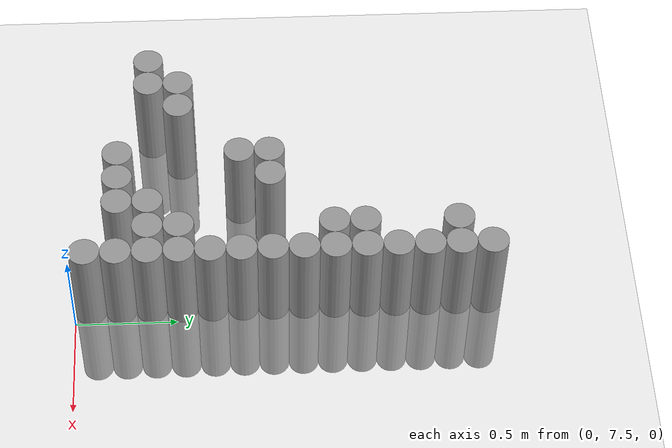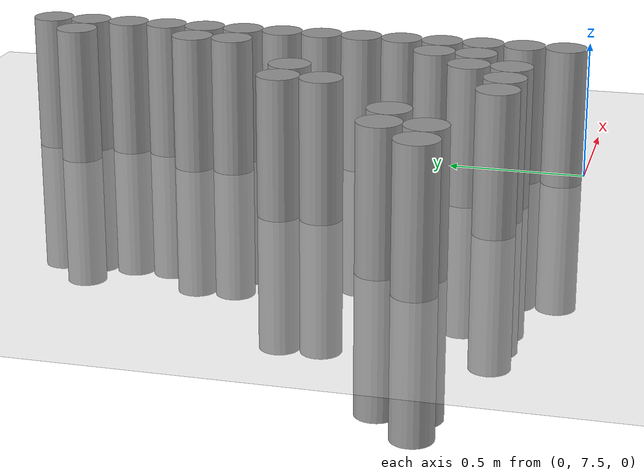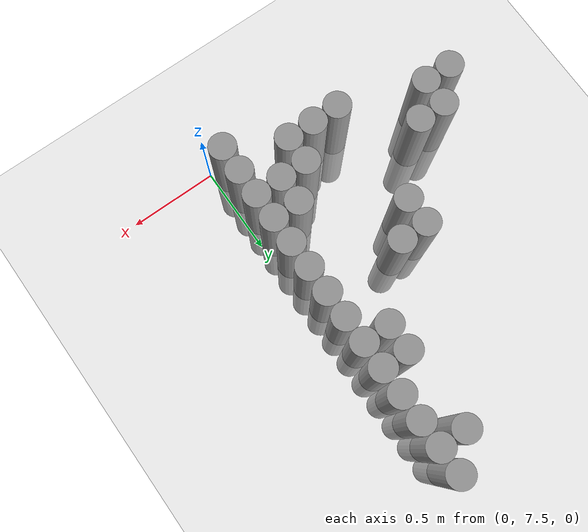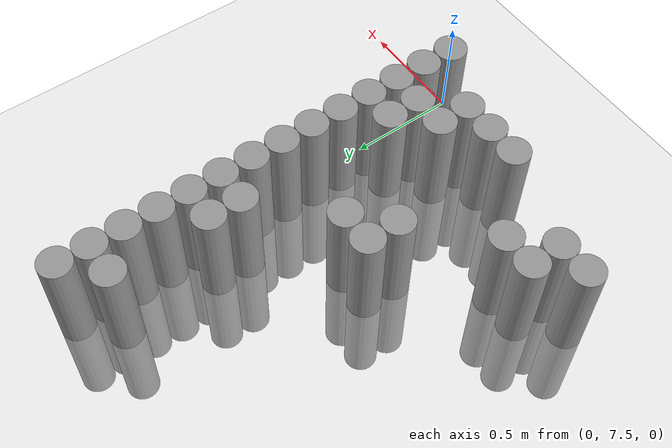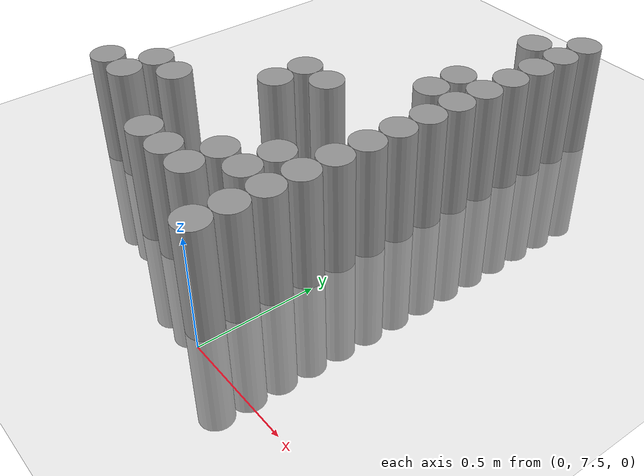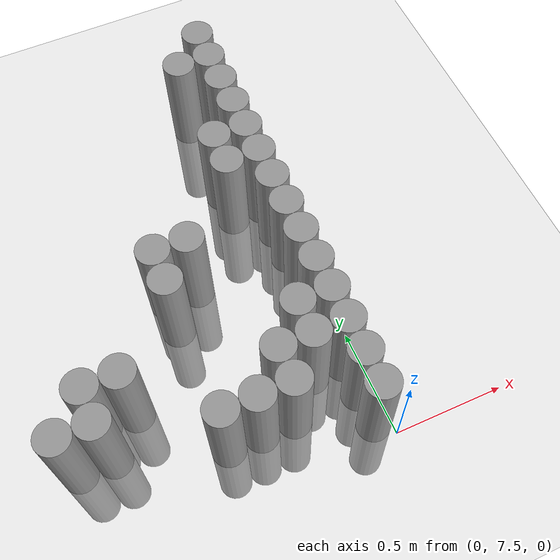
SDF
<sdf version="1.6">
 <world name="default">
  <model name="ground_plane">
   <static>1</static>
   <static>1</static>
   <link name="link">
    <collision name="collision">
     <geometry><plane><normal>0 0 1</normal><size>100 100</size></plane></geometry>
     <surface><friction><ode><mu>100</mu><mu2>50</mu2></ode></friction></surface>
    </collision>
    <visual name="visual">
     <cast_shadows>0</cast_shadows>
     <geometry><plane><normal>0 0 1</normal><size>100 100</size></plane></geometry>
     <material>
      <script><uri>file://media/materials/scripts/gazebo.material</uri><name>Gazebo/Grey</name></script>
     </material>
    </visual>
   </link>
  </model>
  <model name="unit_cylinder_170">
   <static>1</static>
   <pose>-1.275000 7.875000 0.000000 0.000000 0.000000 0.000000</pose>
   <link name="link">
    <inertial>
     <mass>1</mass>
     <inertia><ixx>0.145833</ixx><ixy>0</ixy><ixz>0</ixz><iyy>0.145833</iyy><iyz>0</iyz><izz>0.125</izz></inertia>
    </inertial>
    <collision name="collision">
     <geometry><cylinder><radius>0.075000</radius><length>1</length></cylinder></geometry>
    </collision>
    <visual name="visual">
     <geometry><cylinder><radius>0.075000</radius><length>1</length></cylinder></geometry>
     <material>
      <script><name>Gazebo/Grey</name><uri>file://media/materials/scripts/gazebo.material</uri></script>
     </material>
    </visual>
   </link>
  </model>
  <model name="unit_cylinder_174">
   <static>1</static>
   <pose>-1.125000 7.875000 0.000000 0.000000 0.000000 0.000000</pose>
   <link name="link">
    <inertial>
     <mass>1</mass>
     <inertia><ixx>0.145833</ixx><ixy>0</ixy><ixz>0</ixz><iyy>0.145833</iyy><iyz>0</iyz><izz>0.125</izz></inertia>
    </inertial>
    <collision name="collision">
     <geometry><cylinder><radius>0.075000</radius><length>1</length></cylinder></geometry>
    </collision>
    <visual name="visual">
     <geometry><cylinder><radius>0.075000</radius><length>1</length></cylinder></geometry>
     <material>
      <script><name>Gazebo/Grey</name><uri>file://media/materials/scripts/gazebo.material</uri></script>
     </material>
    </visual>
   </link>
  </model>
  <model name="unit_cylinder_175">
   <static>1</static>
   <pose>-1.125000 8.025000 0.000000 0.000000 0.000000 0.000000</pose>
   <link name="link">
    <inertial>
     <mass>1</mass>
     <inertia><ixx>0.145833</ixx><ixy>0</ixy><ixz>0</ixz><iyy>0.145833</iyy><iyz>0</iyz><izz>0.125</izz></inertia>
    </inertial>
    <collision name="collision">
     <geometry><cylinder><radius>0.075000</radius><length>1</length></cylinder></geometry>
    </collision>
    <visual name="visual">
     <geometry><cylinder><radius>0.075000</radius><length>1</length></cylinder></geometry>
     <material>
      <script><name>Gazebo/Grey</name><uri>file://media/materials/scripts/gazebo.material</uri></script>
     </material>
    </visual>
   </link>
  </model>
  <model name="unit_cylinder_177">
   <static>1</static>
   <pose>-0.975000 8.025000 0.000000 0.000000 0.000000 0.000000</pose>
   <link name="link">
    <inertial>
     <mass>1</mass>
     <inertia><ixx>0.145833</ixx><ixy>0</ixy><ixz>0</ixz><iyy>0.145833</iyy><iyz>0</iyz><izz>0.125</izz></inertia>
    </inertial>
    <collision name="collision">
     <geometry><cylinder><radius>0.075000</radius><length>1</length></cylinder></geometry>
    </collision>
    <visual name="visual">
     <geometry><cylinder><radius>0.075000</radius><length>1</length></cylinder></geometry>
     <material>
      <script><name>Gazebo/Grey</name><uri>file://media/materials/scripts/gazebo.material</uri></script>
     </material>
    </visual>
   </link>
  </model>
  <model name="unit_cylinder_179">
   <static>1</static>
   <pose>-0.675000 7.725000 0.000000 0.000000 0.000000 0.000000</pose>
   <link name="link">
    <inertial>
     <mass>1</mass>
     <inertia><ixx>0.145833</ixx><ixy>0</ixy><ixz>0</ixz><iyy>0.145833</iyy><iyz>0</iyz><izz>0.125</izz></inertia>
    </inertial>
    <collision name="collision">
     <geometry><cylinder><radius>0.075000</radius><length>1</length></cylinder></geometry>
    </collision>
    <visual name="visual">
     <geometry><cylinder><radius>0.075000</radius><length>1</length></cylinder></geometry>
     <material>
      <script><name>Gazebo/Grey</name><uri>file://media/materials/scripts/gazebo.material</uri></script>
     </material>
    </visual>
   </link>
  </model>
  <model name="unit_cylinder_180">
   <static>1</static>
   <pose>-0.675000 8.325000 0.000000 0.000000 0.000000 0.000000</pose>
   <link name="link">
    <inertial>
     <mass>1</mass>
     <inertia><ixx>0.145833</ixx><ixy>0</ixy><ixz>0</ixz><iyy>0.145833</iyy><iyz>0</iyz><izz>0.125</izz></inertia>
    </inertial>
    <collision name="collision">
     <geometry><cylinder><radius>0.075000</radius><length>1</length></cylinder></geometry>
    </collision>
    <visual name="visual">
     <geometry><cylinder><radius>0.075000</radius><length>1</length></cylinder></geometry>
     <material>
      <script><name>Gazebo/Grey</name><uri>file://media/materials/scripts/gazebo.material</uri></script>
     </material>
    </visual>
   </link>
  </model>
  <model name="unit_cylinder_181">
   <static>1</static>
   <pose>-0.675000 8.475000 0.000000 0.000000 0.000000 0.000000</pose>
   <link name="link">
    <inertial>
     <mass>1</mass>
     <inertia><ixx>0.145833</ixx><ixy>0</ixy><ixz>0</ixz><iyy>0.145833</iyy><iyz>0</iyz><izz>0.125</izz></inertia>
    </inertial>
    <collision name="collision">
     <geometry><cylinder><radius>0.075000</radius><length>1</length></cylinder></geometry>
    </collision>
    <visual name="visual">
     <geometry><cylinder><radius>0.075000</radius><length>1</length></cylinder></geometry>
     <material>
      <script><name>Gazebo/Grey</name><uri>file://media/materials/scripts/gazebo.material</uri></script>
     </material>
    </visual>
   </link>
  </model>
  <model name="unit_cylinder_184">
   <static>1</static>
   <pose>-0.525000 7.725000 0.000000 0.000000 0.000000 0.000000</pose>
   <link name="link">
    <inertial>
     <mass>1</mass>
     <inertia><ixx>0.145833</ixx><ixy>0</ixy><ixz>0</ixz><iyy>0.145833</iyy><iyz>0</iyz><izz>0.125</izz></inertia>
    </inertial>
    <collision name="collision">
     <geometry><cylinder><radius>0.075000</radius><length>1</length></cylinder></geometry>
    </collision>
    <visual name="visual">
     <geometry><cylinder><radius>0.075000</radius><length>1</length></cylinder></geometry>
     <material>
      <script><name>Gazebo/Grey</name><uri>file://media/materials/scripts/gazebo.material</uri></script>
     </material>
    </visual>
   </link>
  </model>
  <model name="unit_cylinder_185">
   <static>1</static>
   <pose>-0.525000 8.475000 0.000000 0.000000 0.000000 0.000000</pose>
   <link name="link">
    <inertial>
     <mass>1</mass>
     <inertia><ixx>0.145833</ixx><ixy>0</ixy><ixz>0</ixz><iyy>0.145833</iyy><iyz>0</iyz><izz>0.125</izz></inertia>
    </inertial>
    <collision name="collision">
     <geometry><cylinder><radius>0.075000</radius><length>1</length></cylinder></geometry>
    </collision>
    <visual name="visual">
     <geometry><cylinder><radius>0.075000</radius><length>1</length></cylinder></geometry>
     <material>
      <script><name>Gazebo/Grey</name><uri>file://media/materials/scripts/gazebo.material</uri></script>
     </material>
    </visual>
   </link>
  </model>
  <model name="unit_cylinder_189">
   <static>1</static>
   <pose>-0.375000 7.725000 0.000000 0.000000 0.000000 0.000000</pose>
   <link name="link">
    <inertial>
     <mass>1</mass>
     <inertia><ixx>0.145833</ixx><ixy>0</ixy><ixz>0</ixz><iyy>0.145833</iyy><iyz>0</iyz><izz>0.125</izz></inertia>
    </inertial>
    <collision name="collision">
     <geometry><cylinder><radius>0.075000</radius><length>1</length></cylinder></geometry>
    </collision>
    <visual name="visual">
     <geometry><cylinder><radius>0.075000</radius><length>1</length></cylinder></geometry>
     <material>
      <script><name>Gazebo/Grey</name><uri>file://media/materials/scripts/gazebo.material</uri></script>
     </material>
    </visual>
   </link>
  </model>
  <model name="unit_cylinder_190">
   <static>1</static>
   <pose>-0.375000 7.875000 0.000000 0.000000 0.000000 0.000000</pose>
   <link name="link">
    <inertial>
     <mass>1</mass>
     <inertia><ixx>0.145833</ixx><ixy>0</ixy><ixz>0</ixz><iyy>0.145833</iyy><iyz>0</iyz><izz>0.125</izz></inertia>
    </inertial>
    <collision name="collision">
     <geometry><cylinder><radius>0.075000</radius><length>1</length></cylinder></geometry>
    </collision>
    <visual name="visual">
     <geometry><cylinder><radius>0.075000</radius><length>1</length></cylinder></geometry>
     <material>
      <script><name>Gazebo/Grey</name><uri>file://media/materials/scripts/gazebo.material</uri></script>
     </material>
    </visual>
   </link>
  </model>
  <model name="unit_cylinder_198">
   <static>1</static>
   <pose>-0.225000 7.875000 0.000000 0.000000 0.000000 0.000000</pose>
   <link name="link">
    <inertial>
     <mass>1</mass>
     <inertia><ixx>0.145833</ixx><ixy>0</ixy><ixz>0</ixz><iyy>0.145833</iyy><iyz>0</iyz><izz>0.125</izz></inertia>
    </inertial>
    <collision name="collision">
     <geometry><cylinder><radius>0.075000</radius><length>1</length></cylinder></geometry>
    </collision>
    <visual name="visual">
     <geometry><cylinder><radius>0.075000</radius><length>1</length></cylinder></geometry>
     <material>
      <script><name>Gazebo/Grey</name><uri>file://media/materials/scripts/gazebo.material</uri></script>
     </material>
    </visual>
   </link>
  </model>
  <model name="unit_cylinder_199">
   <static>1</static>
   <pose>-0.225000 8.025000 0.000000 0.000000 0.000000 0.000000</pose>
   <link name="link">
    <inertial>
     <mass>1</mass>
     <inertia><ixx>0.145833</ixx><ixy>0</ixy><ixz>0</ixz><iyy>0.145833</iyy><iyz>0</iyz><izz>0.125</izz></inertia>
    </inertial>
    <collision name="collision">
     <geometry><cylinder><radius>0.075000</radius><length>1</length></cylinder></geometry>
    </collision>
    <visual name="visual">
     <geometry><cylinder><radius>0.075000</radius><length>1</length></cylinder></geometry>
     <material>
      <script><name>Gazebo/Grey</name><uri>file://media/materials/scripts/gazebo.material</uri></script>
     </material>
    </visual>
   </link>
  </model>
  <model name="unit_cylinder_200">
   <static>1</static>
   <pose>-0.225000 8.775000 0.000000 0.000000 0.000000 0.000000</pose>
   <link name="link">
    <inertial>
     <mass>1</mass>
     <inertia><ixx>0.145833</ixx><ixy>0</ixy><ixz>0</ixz><iyy>0.145833</iyy><iyz>0</iyz><izz>0.125</izz></inertia>
    </inertial>
    <collision name="collision">
     <geometry><cylinder><radius>0.075000</radius><length>1</length></cylinder></geometry>
    </collision>
    <visual name="visual">
     <geometry><cylinder><radius>0.075000</radius><length>1</length></cylinder></geometry>
     <material>
      <script><name>Gazebo/Grey</name><uri>file://media/materials/scripts/gazebo.material</uri></script>
     </material>
    </visual>
   </link>
  </model>
  <model name="unit_cylinder_201">
   <static>1</static>
   <pose>-0.225000 8.925000 0.000000 0.000000 0.000000 0.000000</pose>
   <link name="link">
    <inertial>
     <mass>1</mass>
     <inertia><ixx>0.145833</ixx><ixy>0</ixy><ixz>0</ixz><iyy>0.145833</iyy><iyz>0</iyz><izz>0.125</izz></inertia>
    </inertial>
    <collision name="collision">
     <geometry><cylinder><radius>0.075000</radius><length>1</length></cylinder></geometry>
    </collision>
    <visual name="visual">
     <geometry><cylinder><radius>0.075000</radius><length>1</length></cylinder></geometry>
     <material>
      <script><name>Gazebo/Grey</name><uri>file://media/materials/scripts/gazebo.material</uri></script>
     </material>
    </visual>
   </link>
  </model>
  <model name="unit_cylinder_202">
   <static>1</static>
   <pose>-0.225000 9.375000 0.000000 0.000000 0.000000 0.000000</pose>
   <link name="link">
    <inertial>
     <mass>1</mass>
     <inertia><ixx>0.145833</ixx><ixy>0</ixy><ixz>0</ixz><iyy>0.145833</iyy><iyz>0</iyz><izz>0.125</izz></inertia>
    </inertial>
    <collision name="collision">
     <geometry><cylinder><radius>0.075000</radius><length>1</length></cylinder></geometry>
    </collision>
    <visual name="visual">
     <geometry><cylinder><radius>0.075000</radius><length>1</length></cylinder></geometry>
     <material>
      <script><name>Gazebo/Grey</name><uri>file://media/materials/scripts/gazebo.material</uri></script>
     </material>
    </visual>
   </link>
  </model>
  <model name="unit_cylinder_219">
   <static>1</static>
   <pose>-0.075000 7.575000 0.000000 0.000000 0.000000 0.000000</pose>
   <link name="link">
    <inertial>
     <mass>1</mass>
     <inertia><ixx>0.145833</ixx><ixy>0</ixy><ixz>0</ixz><iyy>0.145833</iyy><iyz>0</iyz><izz>0.125</izz></inertia>
    </inertial>
    <collision name="collision">
     <geometry><cylinder><radius>0.075000</radius><length>1</length></cylinder></geometry>
    </collision>
    <visual name="visual">
     <geometry><cylinder><radius>0.075000</radius><length>1</length></cylinder></geometry>
     <material>
      <script><name>Gazebo/Grey</name><uri>file://media/materials/scripts/gazebo.material</uri></script>
     </material>
    </visual>
   </link>
  </model>
  <model name="unit_cylinder_220">
   <static>1</static>
   <pose>-0.075000 7.725000 0.000000 0.000000 0.000000 0.000000</pose>
   <link name="link">
    <inertial>
     <mass>1</mass>
     <inertia><ixx>0.145833</ixx><ixy>0</ixy><ixz>0</ixz><iyy>0.145833</iyy><iyz>0</iyz><izz>0.125</izz></inertia>
    </inertial>
    <collision name="collision">
     <geometry><cylinder><radius>0.075000</radius><length>1</length></cylinder></geometry>
    </collision>
    <visual name="visual">
     <geometry><cylinder><radius>0.075000</radius><length>1</length></cylinder></geometry>
     <material>
      <script><name>Gazebo/Grey</name><uri>file://media/materials/scripts/gazebo.material</uri></script>
     </material>
    </visual>
   </link>
  </model>
  <model name="unit_cylinder_221">
   <static>1</static>
   <pose>-0.075000 7.875000 0.000000 0.000000 0.000000 0.000000</pose>
   <link name="link">
    <inertial>
     <mass>1</mass>
     <inertia><ixx>0.145833</ixx><ixy>0</ixy><ixz>0</ixz><iyy>0.145833</iyy><iyz>0</iyz><izz>0.125</izz></inertia>
    </inertial>
    <collision name="collision">
     <geometry><cylinder><radius>0.075000</radius><length>1</length></cylinder></geometry>
    </collision>
    <visual name="visual">
     <geometry><cylinder><radius>0.075000</radius><length>1</length></cylinder></geometry>
     <material>
      <script><name>Gazebo/Grey</name><uri>file://media/materials/scripts/gazebo.material</uri></script>
     </material>
    </visual>
   </link>
  </model>
  <model name="unit_cylinder_222">
   <static>1</static>
   <pose>-0.075000 8.025000 0.000000 0.000000 0.000000 0.000000</pose>
   <link name="link">
    <inertial>
     <mass>1</mass>
     <inertia><ixx>0.145833</ixx><ixy>0</ixy><ixz>0</ixz><iyy>0.145833</iyy><iyz>0</iyz><izz>0.125</izz></inertia>
    </inertial>
    <collision name="collision">
     <geometry><cylinder><radius>0.075000</radius><length>1</length></cylinder></geometry>
    </collision>
    <visual name="visual">
     <geometry><cylinder><radius>0.075000</radius><length>1</length></cylinder></geometry>
     <material>
      <script><name>Gazebo/Grey</name><uri>file://media/materials/scripts/gazebo.material</uri></script>
     </material>
    </visual>
   </link>
  </model>
  <model name="unit_cylinder_223">
   <static>1</static>
   <pose>-0.075000 8.175000 0.000000 0.000000 0.000000 0.000000</pose>
   <link name="link">
    <inertial>
     <mass>1</mass>
     <inertia><ixx>0.145833</ixx><ixy>0</ixy><ixz>0</ixz><iyy>0.145833</iyy><iyz>0</iyz><izz>0.125</izz></inertia>
    </inertial>
    <collision name="collision">
     <geometry><cylinder><radius>0.075000</radius><length>1</length></cylinder></geometry>
    </collision>
    <visual name="visual">
     <geometry><cylinder><radius>0.075000</radius><length>1</length></cylinder></geometry>
     <material>
      <script><name>Gazebo/Grey</name><uri>file://media/materials/scripts/gazebo.material</uri></script>
     </material>
    </visual>
   </link>
  </model>
  <model name="unit_cylinder_224">
   <static>1</static>
   <pose>-0.075000 8.325000 0.000000 0.000000 0.000000 0.000000</pose>
   <link name="link">
    <inertial>
     <mass>1</mass>
     <inertia><ixx>0.145833</ixx><ixy>0</ixy><ixz>0</ixz><iyy>0.145833</iyy><iyz>0</iyz><izz>0.125</izz></inertia>
    </inertial>
    <collision name="collision">
     <geometry><cylinder><radius>0.075000</radius><length>1</length></cylinder></geometry>
    </collision>
    <visual name="visual">
     <geometry><cylinder><radius>0.075000</radius><length>1</length></cylinder></geometry>
     <material>
      <script><name>Gazebo/Grey</name><uri>file://media/materials/scripts/gazebo.material</uri></script>
     </material>
    </visual>
   </link>
  </model>
  <model name="unit_cylinder_225">
   <static>1</static>
   <pose>-0.075000 8.475000 0.000000 0.000000 0.000000 0.000000</pose>
   <link name="link">
    <inertial>
     <mass>1</mass>
     <inertia><ixx>0.145833</ixx><ixy>0</ixy><ixz>0</ixz><iyy>0.145833</iyy><iyz>0</iyz><izz>0.125</izz></inertia>
    </inertial>
    <collision name="collision">
     <geometry><cylinder><radius>0.075000</radius><length>1</length></cylinder></geometry>
    </collision>
    <visual name="visual">
     <geometry><cylinder><radius>0.075000</radius><length>1</length></cylinder></geometry>
     <material>
      <script><name>Gazebo/Grey</name><uri>file://media/materials/scripts/gazebo.material</uri></script>
     </material>
    </visual>
   </link>
  </model>
  <model name="unit_cylinder_226">
   <static>1</static>
   <pose>-0.075000 8.625000 0.000000 0.000000 0.000000 0.000000</pose>
   <link name="link">
    <inertial>
     <mass>1</mass>
     <inertia><ixx>0.145833</ixx><ixy>0</ixy><ixz>0</ixz><iyy>0.145833</iyy><iyz>0</iyz><izz>0.125</izz></inertia>
    </inertial>
    <collision name="collision">
     <geometry><cylinder><radius>0.075000</radius><length>1</length></cylinder></geometry>
    </collision>
    <visual name="visual">
     <geometry><cylinder><radius>0.075000</radius><length>1</length></cylinder></geometry>
     <material>
      <script><name>Gazebo/Grey</name><uri>file://media/materials/scripts/gazebo.material</uri></script>
     </material>
    </visual>
   </link>
  </model>
  <model name="unit_cylinder_227">
   <static>1</static>
   <pose>-0.075000 8.775000 0.000000 0.000000 0.000000 0.000000</pose>
   <link name="link">
    <inertial>
     <mass>1</mass>
     <inertia><ixx>0.145833</ixx><ixy>0</ixy><ixz>0</ixz><iyy>0.145833</iyy><iyz>0</iyz><izz>0.125</izz></inertia>
    </inertial>
    <collision name="collision">
     <geometry><cylinder><radius>0.075000</radius><length>1</length></cylinder></geometry>
    </collision>
    <visual name="visual">
     <geometry><cylinder><radius>0.075000</radius><length>1</length></cylinder></geometry>
     <material>
      <script><name>Gazebo/Grey</name><uri>file://media/materials/scripts/gazebo.material</uri></script>
     </material>
    </visual>
   </link>
  </model>
  <model name="unit_cylinder_228">
   <static>1</static>
   <pose>-0.075000 8.925000 0.000000 0.000000 0.000000 0.000000</pose>
   <link name="link">
    <inertial>
     <mass>1</mass>
     <inertia><ixx>0.145833</ixx><ixy>0</ixy><ixz>0</ixz><iyy>0.145833</iyy><iyz>0</iyz><izz>0.125</izz></inertia>
    </inertial>
    <collision name="collision">
     <geometry><cylinder><radius>0.075000</radius><length>1</length></cylinder></geometry>
    </collision>
    <visual name="visual">
     <geometry><cylinder><radius>0.075000</radius><length>1</length></cylinder></geometry>
     <material>
      <script><name>Gazebo/Grey</name><uri>file://media/materials/scripts/gazebo.material</uri></script>
     </material>
    </visual>
   </link>
  </model>
  <model name="unit_cylinder_229">
   <static>1</static>
   <pose>-0.075000 9.075000 0.000000 0.000000 0.000000 0.000000</pose>
   <link name="link">
    <inertial>
     <mass>1</mass>
     <inertia><ixx>0.145833</ixx><ixy>0</ixy><ixz>0</ixz><iyy>0.145833</iyy><iyz>0</iyz><izz>0.125</izz></inertia>
    </inertial>
    <collision name="collision">
     <geometry><cylinder><radius>0.075000</radius><length>1</length></cylinder></geometry>
    </collision>
    <visual name="visual">
     <geometry><cylinder><radius>0.075000</radius><length>1</length></cylinder></geometry>
     <material>
      <script><name>Gazebo/Grey</name><uri>file://media/materials/scripts/gazebo.material</uri></script>
     </material>
    </visual>
   </link>
  </model>
  <model name="unit_cylinder_230">
   <static>1</static>
   <pose>-0.075000 9.225000 0.000000 0.000000 0.000000 0.000000</pose>
   <link name="link">
    <inertial>
     <mass>1</mass>
     <inertia><ixx>0.145833</ixx><ixy>0</ixy><ixz>0</ixz><iyy>0.145833</iyy><iyz>0</iyz><izz>0.125</izz></inertia>
    </inertial>
    <collision name="collision">
     <geometry><cylinder><radius>0.075000</radius><length>1</length></cylinder></geometry>
    </collision>
    <visual name="visual">
     <geometry><cylinder><radius>0.075000</radius><length>1</length></cylinder></geometry>
     <material>
      <script><name>Gazebo/Grey</name><uri>file://media/materials/scripts/gazebo.material</uri></script>
     </material>
    </visual>
   </link>
  </model>
  <model name="unit_cylinder_231">
   <static>1</static>
   <pose>-0.075000 9.375000 0.000000 0.000000 0.000000 0.000000</pose>
   <link name="link">
    <inertial>
     <mass>1</mass>
     <inertia><ixx>0.145833</ixx><ixy>0</ixy><ixz>0</ixz><iyy>0.145833</iyy><iyz>0</iyz><izz>0.125</izz></inertia>
    </inertial>
    <collision name="collision">
     <geometry><cylinder><radius>0.075000</radius><length>1</length></cylinder></geometry>
    </collision>
    <visual name="visual">
     <geometry><cylinder><radius>0.075000</radius><length>1</length></cylinder></geometry>
     <material>
      <script><name>Gazebo/Grey</name><uri>file://media/materials/scripts/gazebo.material</uri></script>
     </material>
    </visual>
   </link>
  </model>
  <model name="unit_cylinder_232">
   <static>1</static>
   <pose>-0.075000 9.525000 0.000000 0.000000 0.000000 0.000000</pose>
   <link name="link">
    <inertial>
     <mass>1</mass>
     <inertia><ixx>0.145833</ixx><ixy>0</ixy><ixz>0</ixz><iyy>0.145833</iyy><iyz>0</iyz><izz>0.125</izz></inertia>
    </inertial>
    <collision name="collision">
     <geometry><cylinder><radius>0.075000</radius><length>1</length></cylinder></geometry>
    </collision>
    <visual name="visual">
     <geometry><cylinder><radius>0.075000</radius><length>1</length></cylinder></geometry>
     <material>
      <script><name>Gazebo/Grey</name><uri>file://media/materials/scripts/gazebo.material</uri></script>
     </material>
    </visual>
   </link>
  </model>
 </world>
</sdf>
